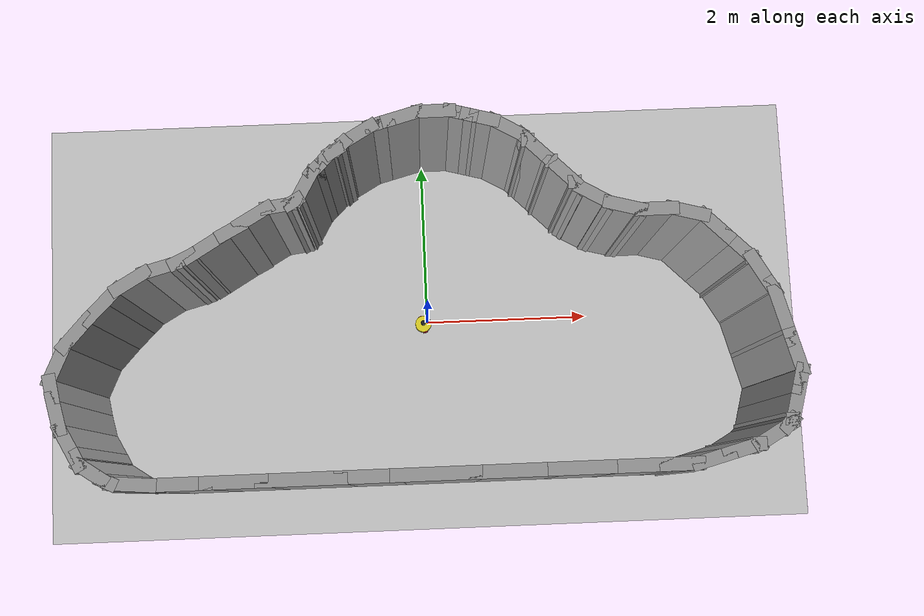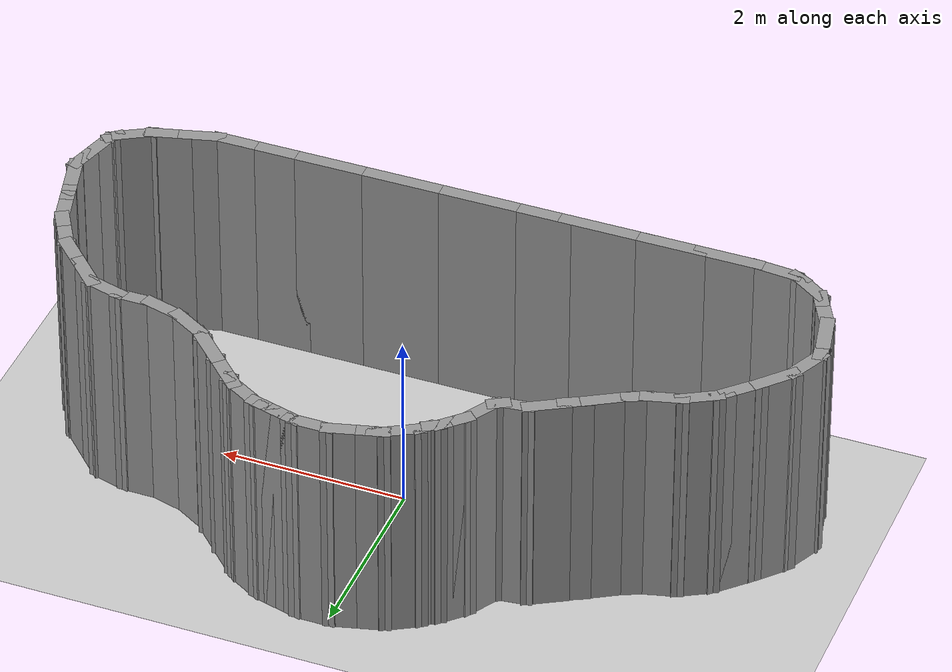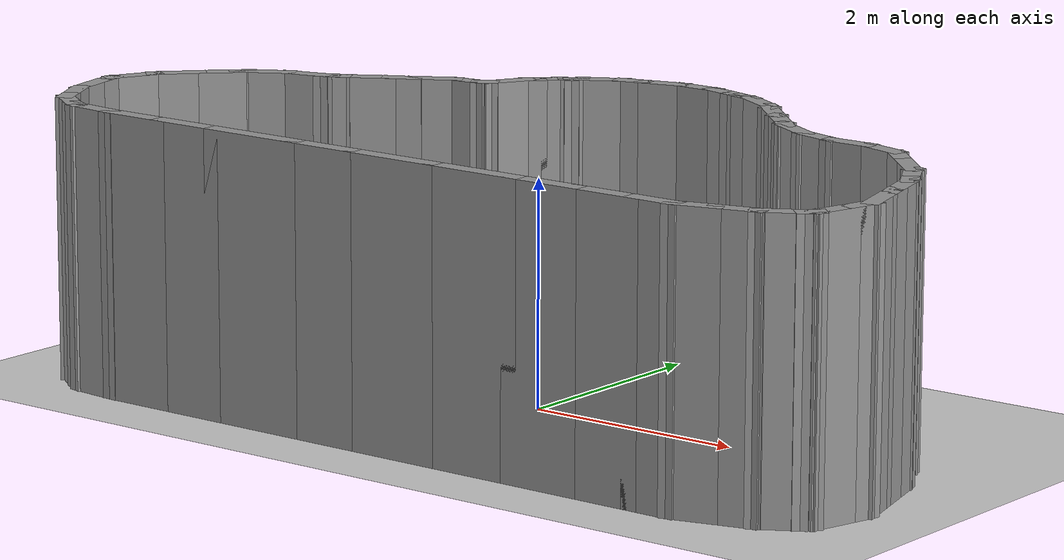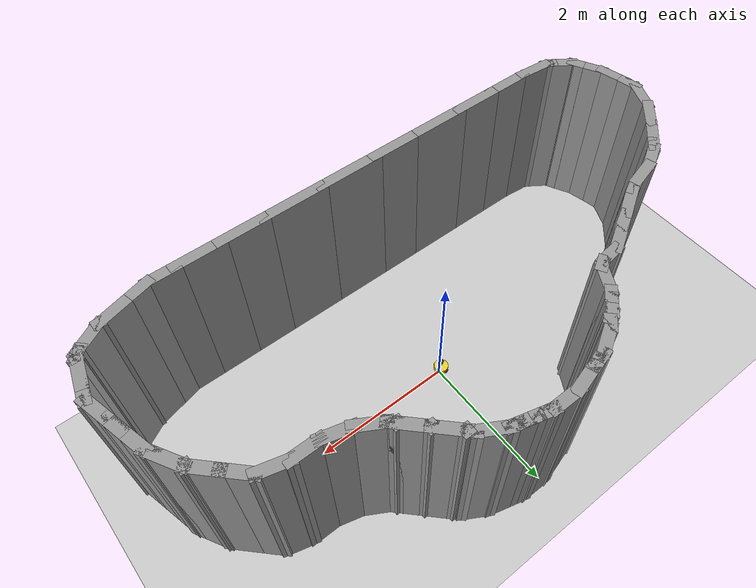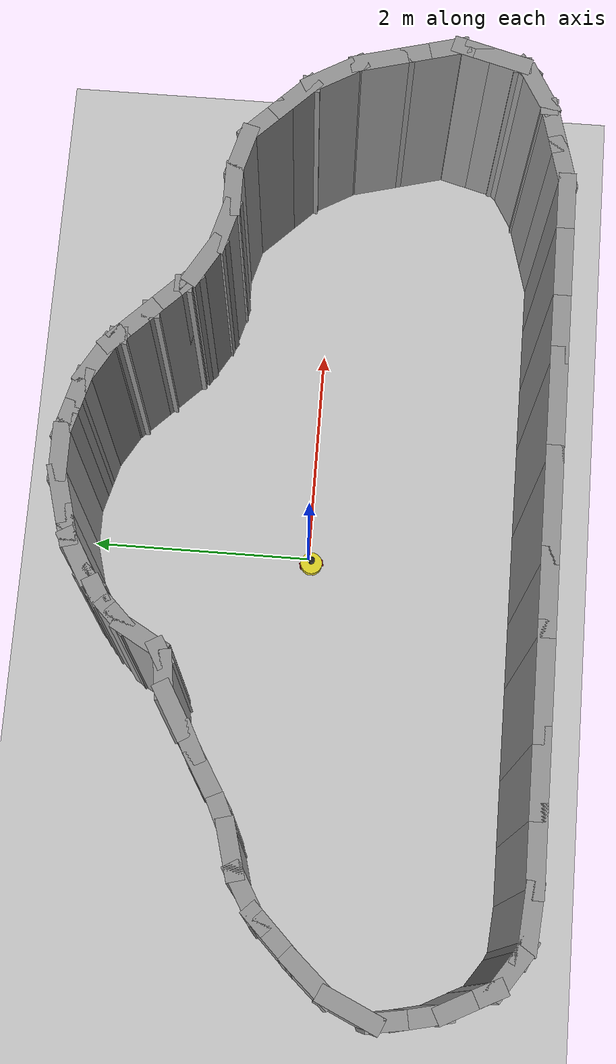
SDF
<sdf version="1.7">
 <world name="default">
  <light name="sun" type="directional">
   <pose>0 0 10 0 -0 0</pose>
   <diffuse>0.8 0.8 0.8 1</diffuse>
   <specular>0.2 0.2 0.2 1</specular>
   <attenuation>
    <range>1000</range>
    <constant>0.9</constant>
    <linear>0.01</linear>
    <quadratic>0.001</quadratic>
   </attenuation>
   <direction>-0.5 0.1 -0.9</direction>
   <spot><inner_angle>0</inner_angle><outer_angle>0</outer_angle><falloff>0</falloff></spot>
  </light>
  <model name="ground_plane">
   <static>1</static>
   <link name="link">
    <collision name="collision">
     <geometry><plane><normal>0 0 1</normal><size>100 100</size></plane></geometry>
     <surface>
      <contact><collide_bitmask>65535</collide_bitmask></contact>
      <friction><ode><mu>100</mu><mu2>50</mu2></ode></friction>
     </surface>
    </collision>
    <visual name="visual">
     <cast_shadows>0</cast_shadows>
     <geometry><plane><normal>0 0 1</normal><size>100 100</size></plane></geometry>
     <material>
      <script><uri>file://media/materials/scripts/gazebo.material</uri><name>Gazebo/Grey</name></script>
     </material>
    </visual>
   </link>
  </model>
  <gravity>0 0 -9.8</gravity>
  <magnetic_field>6e-06 2.3e-05 -4.2e-05</magnetic_field>
  <atmosphere type="adiabatic"/>
  <physics type="ode">
   <max_step_size>0.001</max_step_size>
   <real_time_factor>1</real_time_factor>
   <real_time_update_rate>1000</real_time_update_rate>
  </physics>
  <scene><ambient>0.4 0.4 0.4 1</ambient><background>0.7 0.7 0.7 1</background><shadows>1</shadows></scene>
  <spherical_coordinates>
   <surface_model>EARTH_WGS84</surface_model>
   <latitude_deg>0</latitude_deg>
   <longitude_deg>0</longitude_deg>
   <elevation>0</elevation>
   <heading_deg>0</heading_deg>
  </spherical_coordinates>
  <model name="pool_robot">
   <link name="base_footprint">
    <inertial>
     <pose>0.00125 0 0.078945 0 -0 0</pose>
     <mass>0.64</mass>
     <inertia>
      <ixx>0.00325137</ixx>
      <ixy>0</ixy>
      <ixz>-2.28438e-05</ixz>
      <iyy>0.00331437</iyy>
      <iyz>0</iyz>
      <izz>0.00261021</izz>
     </inertia>
    </inertial>
    <collision name="base_footprint_fixed_joint_lump__base_link_collision">
     <pose>0 0 0.055 0 -0 0</pose>
     <geometry><cylinder><length>0.08</length><radius>0.1</radius></cylinder></geometry>
    </collision>
    <collision name="base_footprint_fixed_joint_lump__camera_collision_1">
     <pose>0.08 0 0.1075 0 -0 0</pose>
     <geometry><box><size>0.01 0.025 0.025</size></box></geometry>
    </collision>
    <collision name="base_footprint_fixed_joint_lump__imu_collision_2">
     <pose>0 0 0.055 0 -0 0</pose>
     <geometry><box><size>0.01 0.01 0.01</size></box></geometry>
    </collision>
    <collision name="base_footprint_fixed_joint_lump__support_collision_3">
     <pose>0 0 0.095 0 -0 0</pose>
     <geometry><cylinder><length>0.15</length><radius>0.01</radius></cylinder></geometry>
    </collision>
    <collision name="base_footprint_fixed_joint_lump__laser_collision_4">
     <pose>0 0 0.195 0 -0 0</pose>
     <geometry><cylinder><length>0.05</length><radius>0.03</radius></cylinder></geometry>
    </collision>
    <visual name="base_footprint_visual"><geometry><sphere><radius>0.001</radius></sphere></geometry></visual>
    <visual name="base_footprint_fixed_joint_lump__base_link_visual_1">
     <pose>0 0 0.055 0 -0 0</pose>
     <geometry><cylinder><length>0.08</length><radius>0.1</radius></cylinder></geometry>
     <material>
      <script><name>Gazebo/Yellow</name><uri>file://media/materials/scripts/gazebo.material</uri></script>
     </material>
    </visual>
    <visual name="base_footprint_fixed_joint_lump__camera_visual_2">
     <pose>0.08 0 0.1075 0 -0 0</pose>
     <geometry><box><size>0.01 0.025 0.025</size></box></geometry>
     <material>
      <script><name>Gazebo/Blue</name><uri>file://media/materials/scripts/gazebo.material</uri></script>
     </material>
    </visual>
    <visual name="base_footprint_fixed_joint_lump__imu_visual_3">
     <pose>0 0 0.055 0 -0 0</pose>
     <geometry><box><size>0.01 0.01 0.01</size></box></geometry>
     <material>
      <script><name>Gazebo/Red</name><uri>file://media/materials/scripts/gazebo.material</uri></script>
     </material>
    </visual>
    <visual name="base_footprint_fixed_joint_lump__support_visual_4">
     <pose>0 0 0.095 0 -0 0</pose>
     <geometry><cylinder><length>0.15</length><radius>0.01</radius></cylinder></geometry>
     <material>
      <script><name>Gazebo/White</name><uri>file://media/materials/scripts/gazebo.material</uri></script>
     </material>
    </visual>
    <visual name="base_footprint_fixed_joint_lump__laser_visual_5">
     <pose>0 0 0.195 0 -0 0</pose>
     <geometry><cylinder><length>0.05</length><radius>0.03</radius></cylinder></geometry>
     <material>
      <script><name>Gazebo/Black</name><uri>file://media/materials/scripts/gazebo.material</uri></script>
     </material>
    </visual>
    <sensor name="imu_sensor" type="imu">
     <always_on>1</always_on>
     <update_rate>100</update_rate>
     <visualize>1</visualize>
     <topic>__default_topic__</topic>
     <plugin name="imu_plugin" filename="libgazebo_ros_imu_sensor.so">
      <topicName>imu</topicName>
      <bodyName>imu</bodyName>
      <updateRateHZ>100.0</updateRateHZ>
      <gaussianNoise>0.0</gaussianNoise>
      <xyzOffset>0 0 0</xyzOffset>
      <rpyOffset>0 0 0</rpyOffset>
      <frameName>imu</frameName>
      <robotNamespace>/</robotNamespace>
     </plugin>
     <pose>0 0 0.055 0 -0 0</pose>
    </sensor>
    <sensor name="rplidar" type="ray">
     <visualize>1</visualize>
     <update_rate>5.5</update_rate>
     <ray>
      <scan>
       <horizontal>
        <samples>360</samples>
        <resolution>1</resolution>
        <min_angle>0</min_angle>
        <max_angle>360</max_angle>
       </horizontal>
       <vertical><samples>1</samples><min_angle>0</min_angle><max_angle>0</max_angle></vertical>
      </scan>
      <range><min>0.1</min><max>3</max><resolution>0.01</resolution></range>
      <noise><type>gaussian</type><mean>0</mean><stddev>0.01</stddev></noise>
     </ray>
     <plugin name="gazebo_rplidar" filename="libgazebo_ros_laser.so">
      <topicName>/scan</topicName>
      <frameName>laser</frameName>
      <robotNamespace>/</robotNamespace>
     </plugin>
     <pose>0 0 0.195 0 -0 0</pose>
    </sensor>
   </link>
   <joint name="back_wheel2base_link" type="revolute">
    <pose relative_to="base_footprint">-0.0925 0 0.0075 0 -0 0</pose>
    <parent>base_footprint</parent>
    <child>back_wheel</child>
    <axis>
     <xyz>1 1 1</xyz>
     <limit><lower>-1e+16</lower><upper>1e+16</upper></limit>
     <dynamics><spring_reference>0</spring_reference><spring_stiffness>0</spring_stiffness></dynamics>
    </axis>
   </joint>
   <link name="back_wheel">
    <pose relative_to="back_wheel2base_link">0 0 0 0 -0 0</pose>
    <inertial>
     <mass>0.03</mass>
     <inertia>
      <ixx>6.75e-07</ixx>
      <ixy>0</ixy>
      <ixz>0</ixz>
      <iyy>6.75e-07</iyy>
      <iyz>0</iyz>
      <izz>6.75e-07</izz>
     </inertia>
    </inertial>
    <collision name="back_wheel_collision">
     <geometry><sphere><radius>0.0075</radius></sphere></geometry>
    </collision>
    <visual name="back_wheel_visual">
     <geometry><sphere><radius>0.0075</radius></sphere></geometry>
     <material>
      <script><name>Gazebo/Red</name><uri>file://media/materials/scripts/gazebo.material</uri></script>
     </material>
    </visual>
   </link>
   <joint name="front_wheel2base_link" type="revolute">
    <pose relative_to="base_footprint">0.0925 0 0.0075 0 -0 0</pose>
    <parent>base_footprint</parent>
    <child>front_wheel</child>
    <axis>
     <xyz>1 1 1</xyz>
     <limit><lower>-1e+16</lower><upper>1e+16</upper></limit>
     <dynamics><spring_reference>0</spring_reference><spring_stiffness>0</spring_stiffness></dynamics>
    </axis>
   </joint>
   <link name="front_wheel">
    <pose relative_to="front_wheel2base_link">0 0 0 0 -0 0</pose>
    <inertial>
     <mass>0.03</mass>
     <inertia>
      <ixx>6.75e-07</ixx>
      <ixy>0</ixy>
      <ixz>0</ixz>
      <iyy>6.75e-07</iyy>
      <iyz>0</iyz>
      <izz>6.75e-07</izz>
     </inertia>
    </inertial>
    <collision name="front_wheel_collision">
     <geometry><sphere><radius>0.0075</radius></sphere></geometry>
    </collision>
    <visual name="front_wheel_visual">
     <geometry><sphere><radius>0.0075</radius></sphere></geometry>
     <material>
      <script><name>Gazebo/Red</name><uri>file://media/materials/scripts/gazebo.material</uri></script>
     </material>
    </visual>
   </link>
   <joint name="left_wheel2base_link" type="revolute">
    <pose relative_to="base_footprint">0 0.1 0.0325 0 -0 0</pose>
    <parent>base_footprint</parent>
    <child>left_wheel</child>
    <axis>
     <xyz>0 1 0</xyz>
     <limit><lower>-1e+16</lower><upper>1e+16</upper></limit>
     <dynamics><spring_reference>0</spring_reference><spring_stiffness>0</spring_stiffness></dynamics>
    </axis>
   </joint>
   <link name="left_wheel">
    <pose relative_to="left_wheel2base_link">0 0 0 0 -0 0</pose>
    <inertial>
     <mass>0.05</mass>
     <inertia>
      <ixx>1.41406e-05</ixx>
      <ixy>0</ixy>
      <ixz>0</ixz>
      <iyy>1.41406e-05</iyy>
      <iyz>0</iyz>
      <izz>2.64063e-05</izz>
     </inertia>
    </inertial>
    <collision name="left_wheel_collision">
     <pose>0 0 0 1.5708 -0 0</pose>
     <geometry><cylinder><length>0.015</length><radius>0.0325</radius></cylinder></geometry>
    </collision>
    <visual name="left_wheel_visual">
     <pose>0 0 0 1.5708 -0 0</pose>
     <geometry><cylinder><length>0.015</length><radius>0.0325</radius></cylinder></geometry>
     <material>
      <script><name>Gazebo/Red</name><uri>file://media/materials/scripts/gazebo.material</uri></script>
     </material>
    </visual>
   </link>
   <joint name="right_wheel2base_link" type="revolute">
    <pose relative_to="base_footprint">0 -0.1 0.0325 0 -0 0</pose>
    <parent>base_footprint</parent>
    <child>right_wheel</child>
    <axis>
     <xyz>0 1 0</xyz>
     <limit><lower>-1e+16</lower><upper>1e+16</upper></limit>
     <dynamics><spring_reference>0</spring_reference><spring_stiffness>0</spring_stiffness></dynamics>
    </axis>
   </joint>
   <link name="right_wheel">
    <pose relative_to="right_wheel2base_link">0 0 0 0 -0 0</pose>
    <inertial>
     <mass>0.05</mass>
     <inertia>
      <ixx>1.41406e-05</ixx>
      <ixy>0</ixy>
      <ixz>0</ixz>
      <iyy>1.41406e-05</iyy>
      <iyz>0</iyz>
      <izz>2.64063e-05</izz>
     </inertia>
    </inertial>
    <collision name="right_wheel_collision">
     <pose>0 0 0 1.5708 -0 0</pose>
     <geometry><cylinder><length>0.015</length><radius>0.0325</radius></cylinder></geometry>
    </collision>
    <visual name="right_wheel_visual">
     <pose>0 0 0 1.5708 -0 0</pose>
     <geometry><cylinder><length>0.015</length><radius>0.0325</radius></cylinder></geometry>
     <material>
      <script><name>Gazebo/Red</name><uri>file://media/materials/scripts/gazebo.material</uri></script>
     </material>
    </visual>
   </link>
   <plugin name="differential_drive_controller" filename="libgazebo_ros_diff_drive.so">
    <rosDebugLevel>Debug</rosDebugLevel>
    <publishWheelTF>1</publishWheelTF>
    <robotNamespace>/</robotNamespace>
    <publishTf>1</publishTf>
    <publishWheelJointState>1</publishWheelJointState>
    <alwaysOn>1</alwaysOn>
    <updateRate>100.0</updateRate>
    <legacyMode>1</legacyMode>
    <leftJoint>left_wheel2base_link</leftJoint>
    <rightJoint>right_wheel2base_link</rightJoint>
    <wheelSeparation>0.2</wheelSeparation>
    <wheelDiameter>0.065</wheelDiameter>
    <broadcastTF>1</broadcastTF>
    <wheelTorque>30</wheelTorque>
    <wheelAcceleration>1.8</wheelAcceleration>
    <commandTopic>cmd_vel</commandTopic>
    <odometryFrame>odom</odometryFrame>
    <odometryTopic>odom</odometryTopic>
    <robotBaseFrame>base_footprint</robotBaseFrame>
   </plugin>
   <frame name="camera2base_link" attached_to="base_link"><pose>0.08 0 0.0525 0 -0 0</pose></frame>
   <frame name="camera" attached_to="camera2base_link"/>
   <frame name="imu2base_link" attached_to="base_link"/>
   <frame name="imu" attached_to="imu2base_link"/>
   <frame name="laser2support" attached_to="support"><pose>0 0 0.1 0 -0 0</pose></frame>
   <frame name="laser" attached_to="laser2support"/>
   <frame name="support2base_link" attached_to="base_link"><pose>0 0 0.04 0 -0 0</pose></frame>
   <frame name="support" attached_to="support2base_link"/>
   <frame name="base_link2base_footprint" attached_to="base_footprint"><pose>0 0 0.055 0 -0 0</pose></frame>
   <frame name="base_link" attached_to="base_link2base_footprint"/>
   <pose>-0.053246 -0.026563 0 0 -0 0.256196</pose>
  </model>
  <model name="spool4">
   <pose>-0.061757 0.002558 0 0 -0 0</pose>
   <link name="Wall_569">
    <collision name="Wall_569_Collision">
     <geometry><box><size>0.489028 0.15 2.5</size></box></geometry>
     <pose>0 0 1.25 0 -0 0</pose>
    </collision>
    <visual name="Wall_569_Visual">
     <pose>0 0 1.25 0 -0 0</pose>
     <geometry><box><size>0.489028 0.15 2.5</size></box></geometry>
     <material>
      <script><uri>file://media/materials/scripts/gazebo.material</uri><name>Gazebo/Grey</name></script>
      <ambient>1 1 1 1</ambient>
     </material>
     <meta><layer>0</layer></meta>
    </visual>
    <pose>-1.25509 1.24754 0 0 -0 1.05316</pose>
   </link>
   <link name="Wall_570">
    <collision name="Wall_570_Collision">
     <geometry><box><size>0.25 0.15 2.5</size></box></geometry>
     <pose>0 0 1.25 0 -0 0</pose>
    </collision>
    <visual name="Wall_570_Visual">
     <pose>0 0 1.25 0 -0 0</pose>
     <geometry><box><size>0.25 0.15 2.5</size></box></geometry>
     <material>
      <script><uri>file://media/materials/scripts/gazebo.material</uri><name>Gazebo/Grey</name></script>
      <ambient>1 1 1 1</ambient>
     </material>
     <meta><layer>0</layer></meta>
    </visual>
    <pose>-1.13586 1.43021 0 0 -0 0.785398</pose>
   </link>
   <link name="Wall_571">
    <collision name="Wall_571_Collision">
     <geometry><box><size>0.25 0.15 2.5</size></box></geometry>
     <pose>0 0 1.25 0 -0 0</pose>
    </collision>
    <visual name="Wall_571_Visual">
     <pose>0 0 1.25 0 -0 0</pose>
     <geometry><box><size>0.25 0.15 2.5</size></box></geometry>
     <material>
      <script><uri>file://media/materials/scripts/gazebo.material</uri><name>Gazebo/Grey</name></script>
      <ambient>1 1 1 1</ambient>
     </material>
     <meta><layer>0</layer></meta>
    </visual>
    <pose>-1.06515 1.50092 0 0 -0 0.785398</pose>
   </link>
   <link name="Wall_572">
    <collision name="Wall_572_Collision">
     <geometry><box><size>0.25 0.15 2.5</size></box></geometry>
     <pose>0 0 1.25 0 -0 0</pose>
    </collision>
    <visual name="Wall_572_Visual">
     <pose>0 0 1.25 0 -0 0</pose>
     <geometry><box><size>0.25 0.15 2.5</size></box></geometry>
     <material>
      <script><uri>file://media/materials/scripts/gazebo.material</uri><name>Gazebo/Grey</name></script>
      <ambient>1 1 1 1</ambient>
     </material>
     <meta><layer>0</layer></meta>
    </visual>
    <pose>-0.994437 1.57163 0 0 -0 0.785398</pose>
   </link>
   <link name="Wall_573">
    <collision name="Wall_573_Collision">
     <geometry><box><size>0.25 0.15 2.5</size></box></geometry>
     <pose>0 0 1.25 0 -0 0</pose>
    </collision>
    <visual name="Wall_573_Visual">
     <pose>0 0 1.25 0 -0 0</pose>
     <geometry><box><size>0.25 0.15 2.5</size></box></geometry>
     <material>
      <script><uri>file://media/materials/scripts/gazebo.material</uri><name>Gazebo/Grey</name></script>
      <ambient>1 1 1 1</ambient>
     </material>
     <meta><layer>0</layer></meta>
    </visual>
    <pose>-0.91578 1.63198 0 0 -0 0.523599</pose>
   </link>
   <link name="Wall_574">
    <collision name="Wall_574_Collision">
     <geometry><box><size>0.25 0.15 2.5</size></box></geometry>
     <pose>0 0 1.25 0 -0 0</pose>
    </collision>
    <visual name="Wall_574_Visual">
     <pose>0 0 1.25 0 -0 0</pose>
     <geometry><box><size>0.25 0.15 2.5</size></box></geometry>
     <material>
      <script><uri>file://media/materials/scripts/gazebo.material</uri><name>Gazebo/Grey</name></script>
      <ambient>1 1 1 1</ambient>
     </material>
     <meta><layer>0</layer></meta>
    </visual>
    <pose>-0.837124 1.69234 0 0 -0 0.785398</pose>
   </link>
   <link name="Wall_575">
    <collision name="Wall_575_Collision">
     <geometry><box><size>0.5 0.15 2.5</size></box></geometry>
     <pose>0 0 1.25 0 -0 0</pose>
    </collision>
    <visual name="Wall_575_Visual">
     <pose>0 0 1.25 0 -0 0</pose>
     <geometry><box><size>0.5 0.15 2.5</size></box></geometry>
     <material>
      <script><uri>file://media/materials/scripts/gazebo.material</uri><name>Gazebo/Grey</name></script>
      <ambient>1 1 1 1</ambient>
     </material>
     <meta><layer>0</layer></meta>
    </visual>
    <pose>-0.650214 1.81519 0 0 -0 0.523599</pose>
   </link>
   <link name="Wall_576">
    <collision name="Wall_576_Collision">
     <geometry><box><size>0.25 0.15 2.5</size></box></geometry>
     <pose>0 0 1.25 0 -0 0</pose>
    </collision>
    <visual name="Wall_576_Visual">
     <pose>0 0 1.25 0 -0 0</pose>
     <geometry><box><size>0.25 0.15 2.5</size></box></geometry>
     <material>
      <script><uri>file://media/materials/scripts/gazebo.material</uri><name>Gazebo/Grey</name></script>
      <ambient>1 1 1 1</ambient>
     </material>
     <meta><layer>0</layer></meta>
    </visual>
    <pose>-0.450363 1.91563 0 0 -0 0.261799</pose>
   </link>
   <link name="Wall_577">
    <collision name="Wall_577_Collision">
     <geometry><box><size>0.25 0.15 2.5</size></box></geometry>
     <pose>0 0 1.25 0 -0 0</pose>
    </collision>
    <visual name="Wall_577_Visual">
     <pose>0 0 1.25 0 -0 0</pose>
     <geometry><box><size>0.25 0.15 2.5</size></box></geometry>
     <material>
      <script><uri>file://media/materials/scripts/gazebo.material</uri><name>Gazebo/Grey</name></script>
      <ambient>1 1 1 1</ambient>
     </material>
     <meta><layer>0</layer></meta>
    </visual>
    <pose>-0.35377 1.94152 0 0 -0 0.261799</pose>
   </link>
   <link name="Wall_578">
    <collision name="Wall_578_Collision">
     <geometry><box><size>0.5 0.15 2.5</size></box></geometry>
     <pose>0 0 1.25 0 -0 0</pose>
    </collision>
    <visual name="Wall_578_Visual">
     <pose>0 0 1.25 0 -0 0</pose>
     <geometry><box><size>0.5 0.15 2.5</size></box></geometry>
     <material>
      <script><uri>file://media/materials/scripts/gazebo.material</uri><name>Gazebo/Grey</name></script>
      <ambient>1 1 1 1</ambient>
     </material>
     <meta><layer>0</layer></meta>
    </visual>
    <pose>-0.136437 1.99975 0 0 -0 0.261799</pose>
   </link>
   <link name="Wall_579">
    <collision name="Wall_579_Collision">
     <geometry><box><size>0.5 0.15 2.5</size></box></geometry>
     <pose>0 0 1.25 0 -0 0</pose>
    </collision>
    <visual name="Wall_579_Visual">
     <pose>0 0 1.25 0 -0 0</pose>
     <geometry><box><size>0.5 0.15 2.5</size></box></geometry>
     <material>
      <script><uri>file://media/materials/scripts/gazebo.material</uri><name>Gazebo/Grey</name></script>
      <ambient>1 1 1 1</ambient>
     </material>
     <meta><layer>0</layer></meta>
    </visual>
    <pose>0.2076 2.04504 0 0 -0 0</pose>
   </link>
   <link name="Wall_580">
    <collision name="Wall_580_Collision">
     <geometry><box><size>0.25 0.15 2.5</size></box></geometry>
     <pose>0 0 1.25 0 -0 0</pose>
    </collision>
    <visual name="Wall_580_Visual">
     <pose>0 0 1.25 0 -0 0</pose>
     <geometry><box><size>0.25 0.15 2.5</size></box></geometry>
     <material>
      <script><uri>file://media/materials/scripts/gazebo.material</uri><name>Gazebo/Grey</name></script>
      <ambient>1 1 1 1</ambient>
     </material>
     <meta><layer>0</layer></meta>
    </visual>
    <pose>0.430896 2.0321 0 0 -0 -0.261799</pose>
   </link>
   <link name="Wall_581">
    <collision name="Wall_581_Collision">
     <geometry><box><size>0.25 0.15 2.5</size></box></geometry>
     <pose>0 0 1.25 0 -0 0</pose>
    </collision>
    <visual name="Wall_581_Visual">
     <pose>0 0 1.25 0 -0 0</pose>
     <geometry><box><size>0.25 0.15 2.5</size></box></geometry>
     <material>
      <script><uri>file://media/materials/scripts/gazebo.material</uri><name>Gazebo/Grey</name></script>
      <ambient>1 1 1 1</ambient>
     </material>
     <meta><layer>0</layer></meta>
    </visual>
    <pose>0.527489 2.00622 0 0 -0 -0.261799</pose>
   </link>
   <link name="Wall_582">
    <collision name="Wall_582_Collision">
     <geometry><box><size>0.25 0.15 2.5</size></box></geometry>
     <pose>0 0 1.25 0 -0 0</pose>
    </collision>
    <visual name="Wall_582_Visual">
     <pose>0 0 1.25 0 -0 0</pose>
     <geometry><box><size>0.25 0.15 2.5</size></box></geometry>
     <material>
      <script><uri>file://media/materials/scripts/gazebo.material</uri><name>Gazebo/Grey</name></script>
      <ambient>1 1 1 1</ambient>
     </material>
     <meta><layer>0</layer></meta>
    </visual>
    <pose>0.624081 1.98034 0 0 -0 -0.261799</pose>
   </link>
   <link name="Wall_583">
    <collision name="Wall_583_Collision">
     <geometry><box><size>0.25 0.15 2.5</size></box></geometry>
     <pose>0 0 1.25 0 -0 0</pose>
    </collision>
    <visual name="Wall_583_Visual">
     <pose>0 0 1.25 0 -0 0</pose>
     <geometry><box><size>0.25 0.15 2.5</size></box></geometry>
     <material>
      <script><uri>file://media/materials/scripts/gazebo.material</uri><name>Gazebo/Grey</name></script>
      <ambient>1 1 1 1</ambient>
     </material>
     <meta><layer>0</layer></meta>
    </visual>
    <pose>0.720674 1.95446 0 0 -0 -0.261799</pose>
   </link>
   <link name="Wall_584">
    <collision name="Wall_584_Collision">
     <geometry><box><size>0.25 0.15 2.5</size></box></geometry>
     <pose>0 0 1.25 0 -0 0</pose>
    </collision>
    <visual name="Wall_584_Visual">
     <pose>0 0 1.25 0 -0 0</pose>
     <geometry><box><size>0.25 0.15 2.5</size></box></geometry>
     <material>
      <script><uri>file://media/materials/scripts/gazebo.material</uri><name>Gazebo/Grey</name></script>
      <ambient>1 1 1 1</ambient>
     </material>
     <meta><layer>0</layer></meta>
    </visual>
    <pose>0.817267 1.92857 0 0 -0 -0.261799</pose>
   </link>
   <link name="Wall_585">
    <collision name="Wall_585_Collision">
     <geometry><box><size>0.5 0.15 2.5</size></box></geometry>
     <pose>0 0 1.25 0 -0 0</pose>
    </collision>
    <visual name="Wall_585_Visual">
     <pose>0 0 1.25 0 -0 0</pose>
     <geometry><box><size>0.5 0.15 2.5</size></box></geometry>
     <material>
      <script><uri>file://media/materials/scripts/gazebo.material</uri><name>Gazebo/Grey</name></script>
      <ambient>1 1 1 1</ambient>
     </material>
     <meta><layer>0</layer></meta>
    </visual>
    <pose>1.01712 1.82813 0 0 -0 -0.523599</pose>
   </link>
   <link name="Wall_586">
    <collision name="Wall_586_Collision">
     <geometry><box><size>0.25 0.15 2.5</size></box></geometry>
     <pose>0 0 1.25 0 -0 0</pose>
    </collision>
    <visual name="Wall_586_Visual">
     <pose>0 0 1.25 0 -0 0</pose>
     <geometry><box><size>0.25 0.15 2.5</size></box></geometry>
     <material>
      <script><uri>file://media/materials/scripts/gazebo.material</uri><name>Gazebo/Grey</name></script>
      <ambient>1 1 1 1</ambient>
     </material>
     <meta><layer>0</layer></meta>
    </visual>
    <pose>1.20403 1.70528 0 0 -0 -0.785398</pose>
   </link>
   <link name="Wall_587">
    <collision name="Wall_587_Collision">
     <geometry><box><size>0.15 0.15 2.5</size></box></geometry>
     <pose>0 0 1.25 0 -0 0</pose>
    </collision>
    <visual name="Wall_587_Visual">
     <pose>0 0 1.25 0 -0 0</pose>
     <geometry><box><size>0.15 0.15 2.5</size></box></geometry>
     <material>
      <script><uri>file://media/materials/scripts/gazebo.material</uri><name>Gazebo/Grey</name></script>
      <ambient>1 1 1 1</ambient>
     </material>
     <meta><layer>0</layer></meta>
    </visual>
    <pose>1.23938 1.66992 0 0 -0 0</pose>
   </link>
   <link name="Wall_588">
    <collision name="Wall_588_Collision">
     <geometry><box><size>0.5 0.15 2.5</size></box></geometry>
     <pose>0 0 1.25 0 -0 0</pose>
    </collision>
    <visual name="Wall_588_Visual">
     <pose>0 0 1.25 0 -0 0</pose>
     <geometry><box><size>0.5 0.15 2.5</size></box></geometry>
     <material>
      <script><uri>file://media/materials/scripts/gazebo.material</uri><name>Gazebo/Grey</name></script>
      <ambient>1 1 1 1</ambient>
     </material>
     <meta><layer>0</layer></meta>
    </visual>
    <pose>1.36313 1.54618 0 0 -0 -0.785398</pose>
   </link>
   <link name="Wall_589">
    <collision name="Wall_589_Collision">
     <geometry><box><size>0.15 0.15 2.5</size></box></geometry>
     <pose>0 0 1.25 0 -0 0</pose>
    </collision>
    <visual name="Wall_589_Visual">
     <pose>0 0 1.25 0 -0 0</pose>
     <geometry><box><size>0.15 0.15 2.5</size></box></geometry>
     <material>
      <script><uri>file://media/materials/scripts/gazebo.material</uri><name>Gazebo/Grey</name></script>
      <ambient>1 1 1 1</ambient>
     </material>
     <meta><layer>0</layer></meta>
    </visual>
    <pose>1.48687 1.42244 0 0 -0 0</pose>
   </link>
   <link name="Wall_590">
    <collision name="Wall_590_Collision">
     <geometry><box><size>0.5 0.15 2.5</size></box></geometry>
     <pose>0 0 1.25 0 -0 0</pose>
    </collision>
    <visual name="Wall_590_Visual">
     <pose>0 0 1.25 0 -0 0</pose>
     <geometry><box><size>0.5 0.15 2.5</size></box></geometry>
     <material>
      <script><uri>file://media/materials/scripts/gazebo.material</uri><name>Gazebo/Grey</name></script>
      <ambient>1 1 1 1</ambient>
     </material>
     <meta><layer>0</layer></meta>
    </visual>
    <pose>1.61061 1.29869 0 0 -0 -0.785398</pose>
   </link>
   <link name="Wall_591">
    <collision name="Wall_591_Collision">
     <geometry><box><size>0.15 0.15 2.5</size></box></geometry>
     <pose>0 0 1.25 0 -0 0</pose>
    </collision>
    <visual name="Wall_591_Visual">
     <pose>0 0 1.25 0 -0 0</pose>
     <geometry><box><size>0.15 0.15 2.5</size></box></geometry>
     <material>
      <script><uri>file://media/materials/scripts/gazebo.material</uri><name>Gazebo/Grey</name></script>
      <ambient>1 1 1 1</ambient>
     </material>
     <meta><layer>0</layer></meta>
    </visual>
    <pose>1.73436 1.17495 0 0 -0 0</pose>
   </link>
   <link name="Wall_592">
    <collision name="Wall_592_Collision">
     <geometry><box><size>0.25 0.15 2.5</size></box></geometry>
     <pose>0 0 1.25 0 -0 0</pose>
    </collision>
    <visual name="Wall_592_Visual">
     <pose>0 0 1.25 0 -0 0</pose>
     <geometry><box><size>0.25 0.15 2.5</size></box></geometry>
     <material>
      <script><uri>file://media/materials/scripts/gazebo.material</uri><name>Gazebo/Grey</name></script>
      <ambient>1 1 1 1</ambient>
     </material>
     <meta><layer>0</layer></meta>
    </visual>
    <pose>1.76971 1.13959 0 0 -0 -0.785398</pose>
   </link>
   <link name="Wall_593">
    <collision name="Wall_593_Collision">
     <geometry><box><size>0.5 0.15 2.5</size></box></geometry>
     <pose>0 0 1.25 0 -0 0</pose>
    </collision>
    <visual name="Wall_593_Visual">
     <pose>0 0 1.25 0 -0 0</pose>
     <geometry><box><size>0.5 0.15 2.5</size></box></geometry>
     <material>
      <script><uri>file://media/materials/scripts/gazebo.material</uri><name>Gazebo/Grey</name></script>
      <ambient>1 1 1 1</ambient>
     </material>
     <meta><layer>0</layer></meta>
    </visual>
    <pose>1.95662 1.01674 0 0 -0 -0.523599</pose>
   </link>
   <link name="Wall_594">
    <collision name="Wall_594_Collision">
     <geometry><box><size>0.5 0.15 2.5</size></box></geometry>
     <pose>0 0 1.25 0 -0 0</pose>
    </collision>
    <visual name="Wall_594_Visual">
     <pose>0 0 1.25 0 -0 0</pose>
     <geometry><box><size>0.5 0.15 2.5</size></box></geometry>
     <material>
      <script><uri>file://media/materials/scripts/gazebo.material</uri><name>Gazebo/Grey</name></script>
      <ambient>1 1 1 1</ambient>
     </material>
     <meta><layer>0</layer></meta>
    </visual>
    <pose>2.27721 0.883945 0 0 -0 -0.261799</pose>
   </link>
   <link name="Wall_595">
    <collision name="Wall_595_Collision">
     <geometry><box><size>0.5 0.15 2.5</size></box></geometry>
     <pose>0 0 1.25 0 -0 0</pose>
    </collision>
    <visual name="Wall_595_Visual">
     <pose>0 0 1.25 0 -0 0</pose>
     <geometry><box><size>0.5 0.15 2.5</size></box></geometry>
     <material>
      <script><uri>file://media/materials/scripts/gazebo.material</uri><name>Gazebo/Grey</name></script>
      <ambient>1 1 1 1</ambient>
     </material>
     <meta><layer>0</layer></meta>
    </visual>
    <pose>2.62125 0.838651 0 0 -0 0</pose>
   </link>
   <link name="Wall_596">
    <collision name="Wall_596_Collision">
     <geometry><box><size>0.5 0.15 2.5</size></box></geometry>
     <pose>0 0 1.25 0 -0 0</pose>
    </collision>
    <visual name="Wall_596_Visual">
     <pose>0 0 1.25 0 -0 0</pose>
     <geometry><box><size>0.5 0.15 2.5</size></box></geometry>
     <material>
      <script><uri>file://media/materials/scripts/gazebo.material</uri><name>Gazebo/Grey</name></script>
      <ambient>1 1 1 1</ambient>
     </material>
     <meta><layer>0</layer></meta>
    </visual>
    <pose>2.96529 0.793358 0 0 -0 -0.261799</pose>
   </link>
   <link name="Wall_597">
    <collision name="Wall_597_Collision">
     <geometry><box><size>0.5 0.15 2.5</size></box></geometry>
     <pose>0 0 1.25 0 -0 0</pose>
    </collision>
    <visual name="Wall_597_Visual">
     <pose>0 0 1.25 0 -0 0</pose>
     <geometry><box><size>0.5 0.15 2.5</size></box></geometry>
     <material>
      <script><uri>file://media/materials/scripts/gazebo.material</uri><name>Gazebo/Grey</name></script>
      <ambient>1 1 1 1</ambient>
     </material>
     <meta><layer>0</layer></meta>
    </visual>
    <pose>3.25807 0.624321 0 0 -0 -0.785398</pose>
   </link>
   <link name="Wall_598">
    <collision name="Wall_598_Collision">
     <geometry><box><size>0.5 0.15 2.5</size></box></geometry>
     <pose>0 0 1.25 0 -0 0</pose>
    </collision>
    <visual name="Wall_598_Visual">
     <pose>0 0 1.25 0 -0 0</pose>
     <geometry><box><size>0.5 0.15 2.5</size></box></geometry>
     <material>
      <script><uri>file://media/materials/scripts/gazebo.material</uri><name>Gazebo/Grey</name></script>
      <ambient>1 1 1 1</ambient>
     </material>
     <meta><layer>0</layer></meta>
    </visual>
    <pose>3.50556 0.376834 0 0 -0 -0.785398</pose>
   </link>
   <link name="Wall_599">
    <collision name="Wall_599_Collision">
     <geometry><box><size>0.15 0.15 2.5</size></box></geometry>
     <pose>0 0 1.25 0 -0 0</pose>
    </collision>
    <visual name="Wall_599_Visual">
     <pose>0 0 1.25 0 -0 0</pose>
     <geometry><box><size>0.15 0.15 2.5</size></box></geometry>
     <material>
      <script><uri>file://media/materials/scripts/gazebo.material</uri><name>Gazebo/Grey</name></script>
      <ambient>1 1 1 1</ambient>
     </material>
     <meta><layer>0</layer></meta>
    </visual>
    <pose>3.6293 0.25309 0 0 -0 0</pose>
   </link>
   <link name="Wall_600">
    <collision name="Wall_600_Collision">
     <geometry><box><size>0.5 0.15 2.5</size></box></geometry>
     <pose>0 0 1.25 0 -0 0</pose>
    </collision>
    <visual name="Wall_600_Visual">
     <pose>0 0 1.25 0 -0 0</pose>
     <geometry><box><size>0.5 0.15 2.5</size></box></geometry>
     <material>
      <script><uri>file://media/materials/scripts/gazebo.material</uri><name>Gazebo/Grey</name></script>
      <ambient>1 1 1 1</ambient>
     </material>
     <meta><layer>0</layer></meta>
    </visual>
    <pose>3.7168 0.101536 0 0 -0 -1.0472</pose>
   </link>
   <link name="Wall_601">
    <collision name="Wall_601_Collision">
     <geometry><box><size>0.25 0.15 2.5</size></box></geometry>
     <pose>0 0 1.25 0 -0 0</pose>
    </collision>
    <visual name="Wall_601_Visual">
     <pose>0 0 1.25 0 -0 0</pose>
     <geometry><box><size>0.25 0.15 2.5</size></box></geometry>
     <material>
      <script><uri>file://media/materials/scripts/gazebo.material</uri><name>Gazebo/Grey</name></script>
      <ambient>1 1 1 1</ambient>
     </material>
     <meta><layer>0</layer></meta>
    </visual>
    <pose>3.8293 -0.09332 0 0 -0 -1.0472</pose>
   </link>
   <link name="Wall_602">
    <collision name="Wall_602_Collision">
     <geometry><box><size>0.5 0.15 2.5</size></box></geometry>
     <pose>0 0 1.25 0 -0 0</pose>
    </collision>
    <visual name="Wall_602_Visual">
     <pose>0 0 1.25 0 -0 0</pose>
     <geometry><box><size>0.5 0.15 2.5</size></box></geometry>
     <material>
      <script><uri>file://media/materials/scripts/gazebo.material</uri><name>Gazebo/Grey</name></script>
      <ambient>1 1 1 1</ambient>
     </material>
     <meta><layer>0</layer></meta>
    </visual>
    <pose>3.89959 -0.305658 0 0 -0 -1.309</pose>
   </link>
   <link name="Wall_603">
    <collision name="Wall_603_Collision">
     <geometry><box><size>0.25 0.15 2.5</size></box></geometry>
     <pose>0 0 1.25 0 -0 0</pose>
    </collision>
    <visual name="Wall_603_Visual">
     <pose>0 0 1.25 0 -0 0</pose>
     <geometry><box><size>0.25 0.15 2.5</size></box></geometry>
     <material>
      <script><uri>file://media/materials/scripts/gazebo.material</uri><name>Gazebo/Grey</name></script>
      <ambient>1 1 1 1</ambient>
     </material>
     <meta><layer>0</layer></meta>
    </visual>
    <pose>3.95783 -0.522992 0 0 -0 -1.309</pose>
   </link>
   <link name="Wall_604">
    <collision name="Wall_604_Collision">
     <geometry><box><size>0.25 0.15 2.5</size></box></geometry>
     <pose>0 0 1.25 0 -0 0</pose>
    </collision>
    <visual name="Wall_604_Visual">
     <pose>0 0 1.25 0 -0 0</pose>
     <geometry><box><size>0.25 0.15 2.5</size></box></geometry>
     <material>
      <script><uri>file://media/materials/scripts/gazebo.material</uri><name>Gazebo/Grey</name></script>
      <ambient>1 1 1 1</ambient>
     </material>
     <meta><layer>0</layer></meta>
    </visual>
    <pose>3.98371 -0.619584 0 0 -0 -1.309</pose>
   </link>
   <link name="Wall_605">
    <collision name="Wall_605_Collision">
     <geometry><box><size>0.5 0.15 2.5</size></box></geometry>
     <pose>0 0 1.25 0 -0 0</pose>
    </collision>
    <visual name="Wall_605_Visual">
     <pose>0 0 1.25 0 -0 0</pose>
     <geometry><box><size>0.5 0.15 2.5</size></box></geometry>
     <material>
      <script><uri>file://media/materials/scripts/gazebo.material</uri><name>Gazebo/Grey</name></script>
      <ambient>1 1 1 1</ambient>
     </material>
     <meta><layer>0</layer></meta>
    </visual>
    <pose>4.04194 -0.836918 0 0 -0 -1.309</pose>
   </link>
   <link name="Wall_606">
    <collision name="Wall_606_Collision">
     <geometry><box><size>0.25 0.15 2.5</size></box></geometry>
     <pose>0 0 1.25 0 -0 0</pose>
    </collision>
    <visual name="Wall_606_Visual">
     <pose>0 0 1.25 0 -0 0</pose>
     <geometry><box><size>0.25 0.15 2.5</size></box></geometry>
     <material>
      <script><uri>file://media/materials/scripts/gazebo.material</uri><name>Gazebo/Grey</name></script>
      <ambient>1 1 1 1</ambient>
     </material>
     <meta><layer>0</layer></meta>
    </visual>
    <pose>4.0743 -1.05425 0 0 -0 -1.8326</pose>
   </link>
   <link name="Wall_607">
    <collision name="Wall_607_Collision">
     <geometry><box><size>0.25 0.15 2.5</size></box></geometry>
     <pose>0 0 1.25 0 -0 0</pose>
    </collision>
    <visual name="Wall_607_Visual">
     <pose>0 0 1.25 0 -0 0</pose>
     <geometry><box><size>0.25 0.15 2.5</size></box></geometry>
     <material>
      <script><uri>file://media/materials/scripts/gazebo.material</uri><name>Gazebo/Grey</name></script>
      <ambient>1 1 1 1</ambient>
     </material>
     <meta><layer>0</layer></meta>
    </visual>
    <pose>4.04841 -1.15084 0 0 -0 -1.8326</pose>
   </link>
   <link name="Wall_608">
    <collision name="Wall_608_Collision">
     <geometry><box><size>0.5 0.15 2.5</size></box></geometry>
     <pose>0 0 1.25 0 -0 0</pose>
    </collision>
    <visual name="Wall_608_Visual">
     <pose>0 0 1.25 0 -0 0</pose>
     <geometry><box><size>0.5 0.15 2.5</size></box></geometry>
     <material>
      <script><uri>file://media/materials/scripts/gazebo.material</uri><name>Gazebo/Grey</name></script>
      <ambient>1 1 1 1</ambient>
     </material>
     <meta><layer>0</layer></meta>
    </visual>
    <pose>3.99018 -1.36818 0 0 -0 -1.8326</pose>
   </link>
   <link name="Wall_609">
    <collision name="Wall_609_Collision">
     <geometry><box><size>0.15 0.15 2.5</size></box></geometry>
     <pose>0 0 1.25 0 -0 0</pose>
    </collision>
    <visual name="Wall_609_Visual">
     <pose>0 0 1.25 0 -0 0</pose>
     <geometry><box><size>0.15 0.15 2.5</size></box></geometry>
     <material>
      <script><uri>file://media/materials/scripts/gazebo.material</uri><name>Gazebo/Grey</name></script>
      <ambient>1 1 1 1</ambient>
     </material>
     <meta><layer>0</layer></meta>
    </visual>
    <pose>3.94489 -1.53721 0 0 -0 0</pose>
   </link>
   <link name="Wall_610">
    <collision name="Wall_610_Collision">
     <geometry><box><size>0.25 0.15 2.5</size></box></geometry>
     <pose>0 0 1.25 0 -0 0</pose>
    </collision>
    <visual name="Wall_610_Visual">
     <pose>0 0 1.25 0 -0 0</pose>
     <geometry><box><size>0.25 0.15 2.5</size></box></geometry>
     <material>
      <script><uri>file://media/materials/scripts/gazebo.material</uri><name>Gazebo/Grey</name></script>
      <ambient>1 1 1 1</ambient>
     </material>
     <meta><layer>0</layer></meta>
    </visual>
    <pose>3.90953 -1.57257 0 0 -0 -2.35619</pose>
   </link>
   <link name="Wall_611">
    <collision name="Wall_611_Collision">
     <geometry><box><size>0.5 0.15 2.5</size></box></geometry>
     <pose>0 0 1.25 0 -0 0</pose>
    </collision>
    <visual name="Wall_611_Visual">
     <pose>0 0 1.25 0 -0 0</pose>
     <geometry><box><size>0.5 0.15 2.5</size></box></geometry>
     <material>
      <script><uri>file://media/materials/scripts/gazebo.material</uri><name>Gazebo/Grey</name></script>
      <ambient>1 1 1 1</ambient>
     </material>
     <meta><layer>0</layer></meta>
    </visual>
    <pose>3.72262 -1.69542 0 0 -0 -2.61799</pose>
   </link>
   <link name="Wall_612">
    <collision name="Wall_612_Collision">
     <geometry><box><size>0.15 0.15 2.5</size></box></geometry>
     <pose>0 0 1.25 0 -0 0</pose>
    </collision>
    <visual name="Wall_612_Visual">
     <pose>0 0 1.25 0 -0 0</pose>
     <geometry><box><size>0.15 0.15 2.5</size></box></geometry>
     <material>
      <script><uri>file://media/materials/scripts/gazebo.material</uri><name>Gazebo/Grey</name></script>
      <ambient>1 1 1 1</ambient>
     </material>
     <meta><layer>0</layer></meta>
    </visual>
    <pose>3.57107 -1.78293 0 0 -0 0</pose>
   </link>
   <link name="Wall_613">
    <collision name="Wall_613_Collision">
     <geometry><box><size>0.5 0.15 2.5</size></box></geometry>
     <pose>0 0 1.25 0 -0 0</pose>
    </collision>
    <visual name="Wall_613_Visual">
     <pose>0 0 1.25 0 -0 0</pose>
     <geometry><box><size>0.5 0.15 2.5</size></box></geometry>
     <material>
      <script><uri>file://media/materials/scripts/gazebo.material</uri><name>Gazebo/Grey</name></script>
      <ambient>1 1 1 1</ambient>
     </material>
     <meta><layer>0</layer></meta>
    </visual>
    <pose>3.40203 -1.82822 0 0 -0 -2.87979</pose>
   </link>
   <link name="Wall_614">
    <collision name="Wall_614_Collision">
     <geometry><box><size>0.5 0.15 2.5</size></box></geometry>
     <pose>0 0 1.25 0 -0 0</pose>
    </collision>
    <visual name="Wall_614_Visual">
     <pose>0 0 1.25 0 -0 0</pose>
     <geometry><box><size>0.5 0.15 2.5</size></box></geometry>
     <material>
      <script><uri>file://media/materials/scripts/gazebo.material</uri><name>Gazebo/Grey</name></script>
      <ambient>1 1 1 1</ambient>
     </material>
     <meta><layer>0</layer></meta>
    </visual>
    <pose>3.06396 -1.91881 0 0 -0 -2.87979</pose>
   </link>
   <link name="Wall_615">
    <collision name="Wall_615_Collision">
     <geometry><box><size>0.5 0.15 2.5</size></box></geometry>
     <pose>0 0 1.25 0 -0 0</pose>
    </collision>
    <visual name="Wall_615_Visual">
     <pose>0 0 1.25 0 -0 0</pose>
     <geometry><box><size>0.5 0.15 2.5</size></box></geometry>
     <material>
      <script><uri>file://media/materials/scripts/gazebo.material</uri><name>Gazebo/Grey</name></script>
      <ambient>1 1 1 1</ambient>
     </material>
     <meta><layer>0</layer></meta>
    </visual>
    <pose>2.71992 -1.9641 0 0 -0 3.14159</pose>
   </link>
   <link name="Wall_616">
    <collision name="Wall_616_Collision">
     <geometry><box><size>0.75 0.15 2.5</size></box></geometry>
     <pose>0 0 1.25 0 -0 0</pose>
    </collision>
    <visual name="Wall_616_Visual">
     <pose>0 0 1.25 0 -0 0</pose>
     <geometry><box><size>0.75 0.15 2.5</size></box></geometry>
     <material>
      <script><uri>file://media/materials/scripts/gazebo.material</uri><name>Gazebo/Grey</name></script>
      <ambient>1 1 1 1</ambient>
     </material>
     <meta><layer>0</layer></meta>
    </visual>
    <pose>2.24492 -1.9641 0 0 -0 3.14159</pose>
   </link>
   <link name="Wall_617">
    <collision name="Wall_617_Collision">
     <geometry><box><size>0.75 0.15 2.5</size></box></geometry>
     <pose>0 0 1.25 0 -0 0</pose>
    </collision>
    <visual name="Wall_617_Visual">
     <pose>0 0 1.25 0 -0 0</pose>
     <geometry><box><size>0.75 0.15 2.5</size></box></geometry>
     <material>
      <script><uri>file://media/materials/scripts/gazebo.material</uri><name>Gazebo/Grey</name></script>
      <ambient>1 1 1 1</ambient>
     </material>
     <meta><layer>0</layer></meta>
    </visual>
    <pose>1.64492 -1.9641 0 0 -0 3.14159</pose>
   </link>
   <link name="Wall_618">
    <collision name="Wall_618_Collision">
     <geometry><box><size>1 0.15 2.5</size></box></geometry>
     <pose>0 0 1.25 0 -0 0</pose>
    </collision>
    <visual name="Wall_618_Visual">
     <pose>0 0 1.25 0 -0 0</pose>
     <geometry><box><size>1 0.15 2.5</size></box></geometry>
     <material>
      <script><uri>file://media/materials/scripts/gazebo.material</uri><name>Gazebo/Grey</name></script>
      <ambient>1 1 1 1</ambient>
     </material>
     <meta><layer>0</layer></meta>
    </visual>
    <pose>0.919919 -1.9641 0 0 -0 3.14159</pose>
   </link>
   <link name="Wall_619">
    <collision name="Wall_619_Collision">
     <geometry><box><size>1 0.15 2.5</size></box></geometry>
     <pose>0 0 1.25 0 -0 0</pose>
    </collision>
    <visual name="Wall_619_Visual">
     <pose>0 0 1.25 0 -0 0</pose>
     <geometry><box><size>1 0.15 2.5</size></box></geometry>
     <material>
      <script><uri>file://media/materials/scripts/gazebo.material</uri><name>Gazebo/Grey</name></script>
      <ambient>1 1 1 1</ambient>
     </material>
     <meta><layer>0</layer></meta>
    </visual>
    <pose>0.069919 -1.9641 0 0 -0 3.14159</pose>
   </link>
   <link name="Wall_620">
    <collision name="Wall_620_Collision">
     <geometry><box><size>0.75 0.15 2.5</size></box></geometry>
     <pose>0 0 1.25 0 -0 0</pose>
    </collision>
    <visual name="Wall_620_Visual">
     <pose>0 0 1.25 0 -0 0</pose>
     <geometry><box><size>0.75 0.15 2.5</size></box></geometry>
     <material>
      <script><uri>file://media/materials/scripts/gazebo.material</uri><name>Gazebo/Grey</name></script>
      <ambient>1 1 1 1</ambient>
     </material>
     <meta><layer>0</layer></meta>
    </visual>
    <pose>-0.655081 -1.9641 0 0 -0 3.14159</pose>
   </link>
   <link name="Wall_621">
    <collision name="Wall_621_Collision">
     <geometry><box><size>1 0.15 2.5</size></box></geometry>
     <pose>0 0 1.25 0 -0 0</pose>
    </collision>
    <visual name="Wall_621_Visual">
     <pose>0 0 1.25 0 -0 0</pose>
     <geometry><box><size>1 0.15 2.5</size></box></geometry>
     <material>
      <script><uri>file://media/materials/scripts/gazebo.material</uri><name>Gazebo/Grey</name></script>
      <ambient>1 1 1 1</ambient>
     </material>
     <meta><layer>0</layer></meta>
    </visual>
    <pose>-1.38008 -1.9641 0 0 -0 3.14159</pose>
   </link>
   <link name="Wall_622">
    <collision name="Wall_622_Collision">
     <geometry><box><size>0.75 0.15 2.5</size></box></geometry>
     <pose>0 0 1.25 0 -0 0</pose>
    </collision>
    <visual name="Wall_622_Visual">
     <pose>0 0 1.25 0 -0 0</pose>
     <geometry><box><size>0.75 0.15 2.5</size></box></geometry>
     <material>
      <script><uri>file://media/materials/scripts/gazebo.material</uri><name>Gazebo/Grey</name></script>
      <ambient>1 1 1 1</ambient>
     </material>
     <meta><layer>0</layer></meta>
    </visual>
    <pose>-2.10508 -1.9641 0 0 -0 3.14159</pose>
   </link>
   <link name="Wall_623">
    <collision name="Wall_623_Collision">
     <geometry><box><size>0.75 0.15 2.5</size></box></geometry>
     <pose>0 0 1.25 0 -0 0</pose>
    </collision>
    <visual name="Wall_623_Visual">
     <pose>0 0 1.25 0 -0 0</pose>
     <geometry><box><size>0.75 0.15 2.5</size></box></geometry>
     <material>
      <script><uri>file://media/materials/scripts/gazebo.material</uri><name>Gazebo/Grey</name></script>
      <ambient>1 1 1 1</ambient>
     </material>
     <meta><layer>0</layer></meta>
    </visual>
    <pose>-2.70508 -1.9641 0 0 -0 3.14159</pose>
   </link>
   <link name="Wall_624">
    <collision name="Wall_624_Collision">
     <geometry><box><size>0.573369 0.15 2.5</size></box></geometry>
     <pose>0 0 1.25 0 -0 0</pose>
    </collision>
    <visual name="Wall_624_Visual">
     <pose>0 0 1.25 0 -0 0</pose>
     <geometry><box><size>0.573369 0.15 2.5</size></box></geometry>
     <material>
      <script><uri>file://media/materials/scripts/gazebo.material</uri><name>Gazebo/Grey</name></script>
      <ambient>1 1 1 1</ambient>
     </material>
     <meta><layer>0</layer></meta>
    </visual>
    <pose>-3.21585 -1.94626 0 0 -0 3.05714</pose>
   </link>
   <link name="Wall_625">
    <collision name="Wall_625_Collision">
     <geometry><box><size>0.249548 0.15 2.5</size></box></geometry>
     <pose>0 0 1.25 0 -0 0</pose>
    </collision>
    <visual name="Wall_625_Visual">
     <pose>0 0 1.25 0 -0 0</pose>
     <geometry><box><size>0.249548 0.15 2.5</size></box></geometry>
     <material>
      <script><uri>file://media/materials/scripts/gazebo.material</uri><name>Gazebo/Grey</name></script>
      <ambient>1 1 1 1</ambient>
     </material>
     <meta><layer>0</layer></meta>
    </visual>
    <pose>-3.47141 -1.9055 0 0 -0 2.69014</pose>
   </link>
   <link name="Wall_626">
    <collision name="Wall_626_Collision">
     <geometry><box><size>0.451794 0.15 2.5</size></box></geometry>
     <pose>0 0 1.25 0 -0 0</pose>
    </collision>
    <visual name="Wall_626_Visual">
     <pose>0 0 1.25 0 -0 0</pose>
     <geometry><box><size>0.451794 0.15 2.5</size></box></geometry>
     <material>
      <script><uri>file://media/materials/scripts/gazebo.material</uri><name>Gazebo/Grey</name></script>
      <ambient>1 1 1 1</ambient>
     </material>
     <meta><layer>0</layer></meta>
    </visual>
    <pose>-3.64085 -1.79755 0 0 -0 2.54293</pose>
   </link>
   <link name="Wall_627">
    <collision name="Wall_627_Collision">
     <geometry><box><size>0.252759 0.15 2.5</size></box></geometry>
     <pose>0 0 1.25 0 -0 0</pose>
    </collision>
    <visual name="Wall_627_Visual">
     <pose>0 0 1.25 0 -0 0</pose>
     <geometry><box><size>0.252759 0.15 2.5</size></box></geometry>
     <material>
      <script><uri>file://media/materials/scripts/gazebo.material</uri><name>Gazebo/Grey</name></script>
      <ambient>1 1 1 1</ambient>
     </material>
     <meta><layer>0</layer></meta>
    </visual>
    <pose>-3.78842 -1.66772 0 0 -0 2.03307</pose>
   </link>
   <link name="Wall_628">
    <collision name="Wall_628_Collision">
     <geometry><box><size>0.485119 0.15 2.5</size></box></geometry>
     <pose>0 0 1.25 0 -0 0</pose>
    </collision>
    <visual name="Wall_628_Visual">
     <pose>0 0 1.25 0 -0 0</pose>
     <geometry><box><size>0.485119 0.15 2.5</size></box></geometry>
     <material>
      <script><uri>file://media/materials/scripts/gazebo.material</uri><name>Gazebo/Grey</name></script>
      <ambient>1 1 1 1</ambient>
     </material>
     <meta><layer>0</layer></meta>
    </visual>
    <pose>-3.88971 -1.47332 0 0 -0 2.05033</pose>
   </link>
   <link name="Wall_629">
    <collision name="Wall_629_Collision">
     <geometry><box><size>0.502408 0.15 2.5</size></box></geometry>
     <pose>0 0 1.25 0 -0 0</pose>
    </collision>
    <visual name="Wall_629_Visual">
     <pose>0 0 1.25 0 -0 0</pose>
     <geometry><box><size>0.502408 0.15 2.5</size></box></geometry>
     <material>
      <script><uri>file://media/materials/scripts/gazebo.material</uri><name>Gazebo/Grey</name></script>
      <ambient>1 1 1 1</ambient>
     </material>
     <meta><layer>0</layer></meta>
    </visual>
    <pose>-4.00901 -1.15272 0 0 -0 1.79335</pose>
   </link>
   <link name="Wall_630">
    <collision name="Wall_630_Collision">
     <geometry><box><size>0.335208 0.15 2.5</size></box></geometry>
     <pose>0 0 1.25 0 -0 0</pose>
    </collision>
    <visual name="Wall_630_Visual">
     <pose>0 0 1.25 0 -0 0</pose>
     <geometry><box><size>0.335208 0.15 2.5</size></box></geometry>
     <material>
      <script><uri>file://media/materials/scripts/gazebo.material</uri><name>Gazebo/Grey</name></script>
      <ambient>1 1 1 1</ambient>
     </material>
     <meta><layer>0</layer></meta>
    </visual>
    <pose>-4.06069 -0.889292 0 0 -0 1.74291</pose>
   </link>
   <link name="Wall_631">
    <collision name="Wall_631_Collision">
     <geometry><box><size>0.552174 0.15 2.5</size></box></geometry>
     <pose>0 0 1.25 0 -0 0</pose>
    </collision>
    <visual name="Wall_631_Visual">
     <pose>0 0 1.25 0 -0 0</pose>
     <geometry><box><size>0.552174 0.15 2.5</size></box></geometry>
     <material>
      <script><uri>file://media/materials/scripts/gazebo.material</uri><name>Gazebo/Grey</name></script>
      <ambient>1 1 1 1</ambient>
     </material>
     <meta><layer>0</layer></meta>
    </visual>
    <pose>-3.9961 -0.615172 0 0 -0 1.14204</pose>
   </link>
   <link name="Wall_632">
    <collision name="Wall_632_Collision">
     <geometry><box><size>0.537001 0.15 2.5</size></box></geometry>
     <pose>0 0 1.25 0 -0 0</pose>
    </collision>
    <visual name="Wall_632_Visual">
     <pose>0 0 1.25 0 -0 0</pose>
     <geometry><box><size>0.537001 0.15 2.5</size></box></geometry>
     <material>
      <script><uri>file://media/materials/scripts/gazebo.material</uri><name>Gazebo/Grey</name></script>
      <ambient>1 1 1 1</ambient>
     </material>
     <meta><layer>0</layer></meta>
    </visual>
    <pose>-3.78879 -0.289006 0 0 -0 0.833762</pose>
   </link>
   <link name="Wall_633">
    <collision name="Wall_633_Collision">
     <geometry><box><size>0.5 0.15 2.5</size></box></geometry>
     <pose>0 0 1.25 0 -0 0</pose>
    </collision>
    <visual name="Wall_633_Visual">
     <pose>0 0 1.25 0 -0 0</pose>
     <geometry><box><size>0.5 0.15 2.5</size></box></geometry>
     <material>
      <script><uri>file://media/materials/scripts/gazebo.material</uri><name>Gazebo/Grey</name></script>
      <ambient>1 1 1 1</ambient>
     </material>
     <meta><layer>0</layer></meta>
    </visual>
    <pose>-3.535 -0.021982 0 0 -0 0.785398</pose>
   </link>
   <link name="Wall_634">
    <collision name="Wall_634_Collision">
     <geometry><box><size>0.25 0.15 2.5</size></box></geometry>
     <pose>0 0 1.25 0 -0 0</pose>
    </collision>
    <visual name="Wall_634_Visual">
     <pose>0 0 1.25 0 -0 0</pose>
     <geometry><box><size>0.25 0.15 2.5</size></box></geometry>
     <material>
      <script><uri>file://media/materials/scripts/gazebo.material</uri><name>Gazebo/Grey</name></script>
      <ambient>1 1 1 1</ambient>
     </material>
     <meta><layer>0</layer></meta>
    </visual>
    <pose>-3.3759 0.137117 0 0 -0 0.785398</pose>
   </link>
   <link name="Wall_635">
    <collision name="Wall_635_Collision">
     <geometry><box><size>0.5 0.15 2.5</size></box></geometry>
     <pose>0 0 1.25 0 -0 0</pose>
    </collision>
    <visual name="Wall_635_Visual">
     <pose>0 0 1.25 0 -0 0</pose>
     <geometry><box><size>0.5 0.15 2.5</size></box></geometry>
     <material>
      <script><uri>file://media/materials/scripts/gazebo.material</uri><name>Gazebo/Grey</name></script>
      <ambient>1 1 1 1</ambient>
     </material>
     <meta><layer>0</layer></meta>
    </visual>
    <pose>-3.18899 0.259972 0 0 -0 0.523599</pose>
   </link>
   <link name="Wall_636">
    <collision name="Wall_636_Collision">
     <geometry><box><size>0.5 0.15 2.5</size></box></geometry>
     <pose>0 0 1.25 0 -0 0</pose>
    </collision>
    <visual name="Wall_636_Visual">
     <pose>0 0 1.25 0 -0 0</pose>
     <geometry><box><size>0.5 0.15 2.5</size></box></geometry>
     <material>
      <script><uri>file://media/materials/scripts/gazebo.material</uri><name>Gazebo/Grey</name></script>
      <ambient>1 1 1 1</ambient>
     </material>
     <meta><layer>0</layer></meta>
    </visual>
    <pose>-2.8684 0.392766 0 0 -0 0.261799</pose>
   </link>
   <link name="Wall_637">
    <collision name="Wall_637_Collision">
     <geometry><box><size>0.335389 0.15 2.5</size></box></geometry>
     <pose>0 0 1.25 0 -0 0</pose>
    </collision>
    <visual name="Wall_637_Visual">
     <pose>0 0 1.25 0 -0 0</pose>
     <geometry><box><size>0.335389 0.15 2.5</size></box></geometry>
     <material>
      <script><uri>file://media/materials/scripts/gazebo.material</uri><name>Gazebo/Grey</name></script>
      <ambient>1 1 1 1</ambient>
     </material>
     <meta><layer>0</layer></meta>
    </visual>
    <pose>-2.6155 0.477559 0 0 -0 0.440211</pose>
   </link>
   <link name="Wall_638">
    <collision name="Wall_638_Collision">
     <geometry><box><size>0.569731 0.15 2.5</size></box></geometry>
     <pose>0 0 1.25 0 -0 0</pose>
    </collision>
    <visual name="Wall_638_Visual">
     <pose>0 0 1.25 0 -0 0</pose>
     <geometry><box><size>0.569731 0.15 2.5</size></box></geometry>
     <material>
      <script><uri>file://media/materials/scripts/gazebo.material</uri><name>Gazebo/Grey</name></script>
      <ambient>1 1 1 1</ambient>
     </material>
     <meta><layer>0</layer></meta>
    </visual>
    <pose>-2.36261 0.613137 0 0 -0 0.537032</pose>
   </link>
   <link name="Wall_639">
    <collision name="Wall_639_Collision">
     <geometry><box><size>0.36599 0.15 2.5</size></box></geometry>
     <pose>0 0 1.25 0 -0 0</pose>
    </collision>
    <visual name="Wall_639_Visual">
     <pose>0 0 1.25 0 -0 0</pose>
     <geometry><box><size>0.36599 0.15 2.5</size></box></geometry>
     <material>
      <script><uri>file://media/materials/scripts/gazebo.material</uri><name>Gazebo/Grey</name></script>
      <ambient>1 1 1 1</ambient>
     </material>
     <meta><layer>0</layer></meta>
    </visual>
    <pose>-2.07516 0.781569 0 0 -0 0.479075</pose>
   </link>
   <link name="Wall_640">
    <collision name="Wall_640_Collision">
     <geometry><box><size>0.5 0.15 2.5</size></box></geometry>
     <pose>0 0 1.25 0 -0 0</pose>
    </collision>
    <visual name="Wall_640_Visual">
     <pose>0 0 1.25 0 -0 0</pose>
     <geometry><box><size>0.5 0.15 2.5</size></box></geometry>
     <material>
      <script><uri>file://media/materials/scripts/gazebo.material</uri><name>Gazebo/Grey</name></script>
      <ambient>1 1 1 1</ambient>
     </material>
     <meta><layer>0</layer></meta>
    </visual>
    <pose>-1.82777 0.930136 0 0 -0 0.523599</pose>
   </link>
   <link name="Wall_641">
    <collision name="Wall_641_Collision">
     <geometry><box><size>0.402754 0.15 2.5</size></box></geometry>
     <pose>0 0 1.25 0 -0 0</pose>
    </collision>
    <visual name="Wall_641_Visual">
     <pose>0 0 1.25 0 -0 0</pose>
     <geometry><box><size>0.402754 0.15 2.5</size></box></geometry>
     <material>
      <script><uri>file://media/materials/scripts/gazebo.material</uri><name>Gazebo/Grey</name></script>
      <ambient>1 1 1 1</ambient>
     </material>
     <meta><layer>0</layer></meta>
    </visual>
    <pose>-1.5509 1.03394 0 0 -0 0.129349</pose>
   </link>
   <link name="Wall_642">
    <collision name="Wall_642_Collision">
     <geometry><box><size>0.25 0.15 2.5</size></box></geometry>
     <pose>0 0 1.25 0 -0 0</pose>
    </collision>
    <visual name="Wall_642_Visual">
     <pose>0 0 1.25 0 -0 0</pose>
     <geometry><box><size>0.25 0.15 2.5</size></box></geometry>
     <material>
      <script><uri>file://media/materials/scripts/gazebo.material</uri><name>Gazebo/Grey</name></script>
      <ambient>1 1 1 1</ambient>
     </material>
     <meta><layer>0</layer></meta>
    </visual>
    <pose>-1.38227 1.07524 0 0 -0 0.523599</pose>
   </link>
   <static>1</static>
  </model>
 </world>
</sdf>
